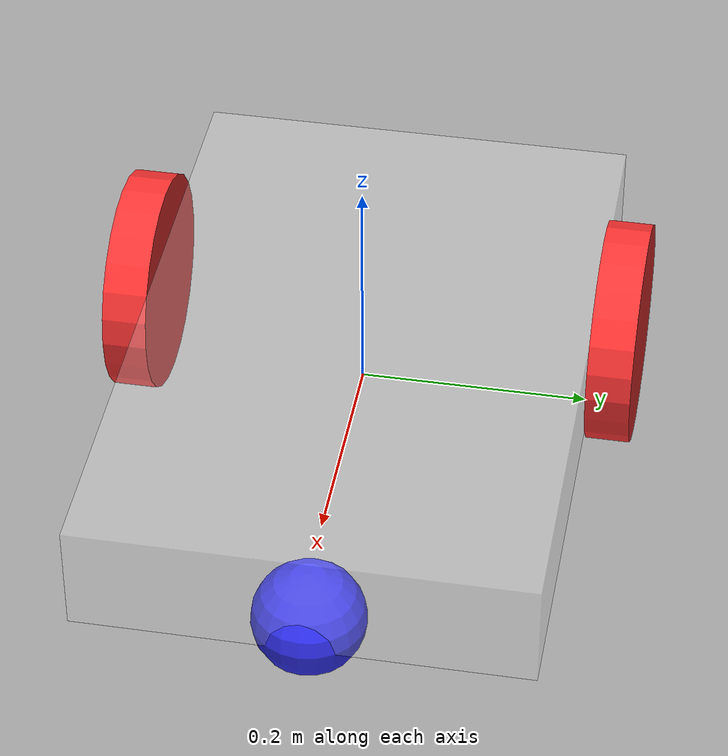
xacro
<robot name = "diff_drive" xmlns:xacro = "http://wiki.ros.org/xacro">

    <xacro:macro name = "make_base_link"
                 params = "name xyz rpy mass width height depth rgba">

        <link name = "${name}">
            <inertial>
                <origin xyz = "${xyz}" rpy = "${rpy}"/>
                <mass value="${mass}"/>
                <inertia ixx="${(1/12) * mass * (height * height * depth *depth)}" ixy="0.0" ixz="0.0"
                         iyy="${(1/12) * mass * (width * width * depth *depth)}" iyz="0.0"
                         izz="${(1/12) * mass * (width * width * height * height)}"/>
            </inertial>
            <visual>
                <origin xyz = "${xyz}" rpy = "${rpy}"/>
                <geometry>
                    <box size="${width} ${depth} ${height}"/>
                </geometry>
                <material name = "${name}_material">
                    <color rgba = "${rgba}"/>
                </material>
            </visual>
            <collision>
                <origin xyz = "${xyz}" rpy = "${rpy}"/>
                <geometry>
                    <box size="${width} ${depth} ${height}"/>
                </geometry>
            </collision>
        </link>

        <gazebo reference = "${name}">
            <visual>
                <material>
                    <ambient>${rgba}</ambient>
                </material>
            </visual>
        </gazebo>

    </xacro:macro>

    <xacro:macro name = "make_cylinder_link"
                 params = "name xyz rpy mass radius length rgba">

        <link name = "${name}">
            <inertial>
                <origin xyz = "${xyz}" rpy = "${rpy}"/>
                <mass value="${mass}"/>
                <inertia ixx="${(1/12) * mass * (3 * radius * radius + length * length)}" ixy="0.0" ixz="0.0"
                         iyy="${(1/12) * mass * (3 * radius * radius + length * length)}" iyz="0.0"
                         izz="${(1/2) * mass * radius * radius}"/>
            </inertial>
            <visual>
                <origin xyz = "${xyz}" rpy = "${rpy}"/>
                <geometry>
                    <cylinder radius="${radius}" length="${length}"/>
                </geometry>
                <material name = "${name}_material">
                    <color rgba = "${rgba}"/>
                </material>
            </visual>
            <collision>
                <origin xyz = "${xyz}" rpy = "${rpy}"/>
                <geometry>
                    <cylinder radius="${radius}" length="${length}"/>
                </geometry>
            </collision>
        </link>

        <gazebo reference = "${name}">
            <visual>
                <material>
                    <ambient>${rgba}</ambient>
                </material>
            </visual>
            <mu1 value = "1"/>
            <mu2 value = "1"/>
            <kp value="1000000"/>
            <kd value= "100"/>
        </gazebo>

    </xacro:macro>

    <xacro:macro name = "make_sphere_link"
                 params = "name xyz rpy mass radius rgba">

        <link name = "${name}">
            <inertial>
                <origin xyz = "${xyz}" rpy = "${rpy}"/>
                <mass value="${mass}"/>
                <inertia ixx="${(2/5) * mass * radius * radius}" ixy="0.0" ixz="0.0"
                         iyy="${(2/5) * mass * radius * radius}" iyz="0.0"
                         izz="${(2/5) * mass * radius * radius}"/>
            </inertial>
            <visual>
                <origin xyz = "${xyz}" rpy = "${rpy}"/>
                <geometry>
                    <sphere radius="${radius}"/>
                </geometry>
                <material name = "${name}_material">
                    <color rgba = "${rgba}"/>
                </material>
            </visual>
            <collision>
                <origin xyz = "${xyz}" rpy = "${rpy}"/>
                <geometry>
                    <sphere radius="${radius}"/>
                </geometry>
            </collision>
        </link>

        <gazebo reference = "${name}">
            <visual>
                <material>
                    <ambient>${rgba}</ambient>
                </material>
            </visual>
            <mu1 value="0" />
            <mu2 value="0" />
        </gazebo>

    </xacro:macro>

    <xacro:macro name = "make_continuous_joint"
                 params = "name joint_type xyz rpy parent child axis damping friction">
        <joint name = "${name}" type = "${joint_type}">
            <origin xyz = "${xyz}" rpy = "${rpy}"/>
            <parent link="${parent}"/>
            <child link="${child}"/>
            <axis xyz="${axis}"/>
            <dynamics damping = "${damping}" friction = "${friction}"/>
        </joint>
    </xacro:macro>

    <xacro:macro name = "make_fixed_joint"
                 params = "name joint_type xyz rpy parent child damping friction">
        <joint name = "${name}" type = "${joint_type}">
            <origin xyz = "${xyz}" rpy = "${rpy}"/>
            <parent link="${parent}"/>
            <child link="${child}"/>
            <dynamics damping = "${damping}" friction = "${friction}"/>
        </joint>
    </xacro:macro>

    <link name="dummy">
    </link>
    <joint name="dummy_joint" type="fixed">
        <parent link="dummy"/>
        <child link="base_link"/>
    </joint>

    <xacro:make_base_link name ="base_link"
                          xyz = "0 0 0"
                          rpy = "0 0 0"
                          mass = "1"
                          width = "0.6"
                          height = "0.1"
                          depth = "0.4"
                          rgba = "1.0 1.0 1.0 0.2"/>

    <xacro:make_cylinder_link name = "left_wheel"
                           xyz = "0 0 0"
                           rpy = "0 0 0"
                           mass = "0.05"
                           radius = "0.1"
                           length = "0.04"
                           rgba = "1 0.2 0.2 1.0"/>

    <xacro:make_continuous_joint name = "left_wheel_joint"
                                 joint_type = "continuous"
                                 xyz = "-0.1 0.22 0"
                                 rpy = "0 ${-pi/2} ${-pi/2}"
                                 parent = "base_link"
                                 child = "left_wheel"
                                 axis = "0 0 1"
                                 damping = "0"
                                 friction = "0"/>

    <xacro:make_cylinder_link name = "right_wheel"
                           xyz = "0 0 0"
                           rpy = "0 0 0"
                           mass = "0.05"
                           radius = "0.1"
                           length = "0.04"
                           rgba = "1 0.2 0.2 1.0"/>

    <xacro:make_continuous_joint name = "right_wheel_joint"
                                 joint_type = "continuous"
                                 xyz = "-0.1 -0.22 0"
                                 rpy = "0.0 ${-pi/2} ${-pi/2}"
                                 parent = "base_link"
                                 child = "right_wheel"
                                 axis = "0 0 1"
                                 damping = "0"
                                 friction = "0"/>

    <xacro:make_sphere_link name = "caster_wheel"
                                 xyz = "0 0 0"
                                 rpy = "0 0 0"
                                 mass = "0.02"
                                 radius = "0.05"
                                 rgba = "0.2 0.2 1.0 1.0"/>

    <xacro:make_fixed_joint name = "caster_wheel_joint"
                                 joint_type = "fixed"
                                 xyz = "0.26 0 -0.05"
                                 rpy = "0 0 0"
                                 parent = "base_link"
                                 child = "caster_wheel"
                                 damping = "0"
                                 friction = "0"/>

    <xacro:macro name = "make_simple_transmission"
                 params = "name
                           joint
                           hardware_interface
                           actuator
                           mechanical_reduction">

        <transmission name = "${joint}">
            <type>transmission_interface/SimpleTransmission</type>
            <joint name = "${joint}">
                <hardwareInterface>${hardware_interface}</hardwareInterface>
            </joint>
            <actuator name = "${actuator}">
                <mechanicalReduction>${mechanical_reduction}</mechanicalReduction>
            </actuator>
        </transmission>

    </xacro:macro>

    <xacro:make_simple_transmission name = "left_wheel_transmission"
                                    joint = "left_wheel_joint"
                                    hardware_interface = "hardware_interface/VelocityJointInterface"
                                    actuator = "left_motor"
                                    mechanical_reduction = "1"/>

    <xacro:make_simple_transmission name = "right_wheel_transmission"
                                    joint = "right_wheel_joint"
                                    hardware_interface = "hardware_interface/VelocityJointInterface"
                                    actuator = "right_motor"
                                    mechanical_reduction = "1"/>

    <gazebo>
        <plugin name="gazebo_ros_control" filename="libgazebo_ros_control.so">
            <robotNamespace>/</robotNamespace>
        </plugin>
    </gazebo>

</robot>
